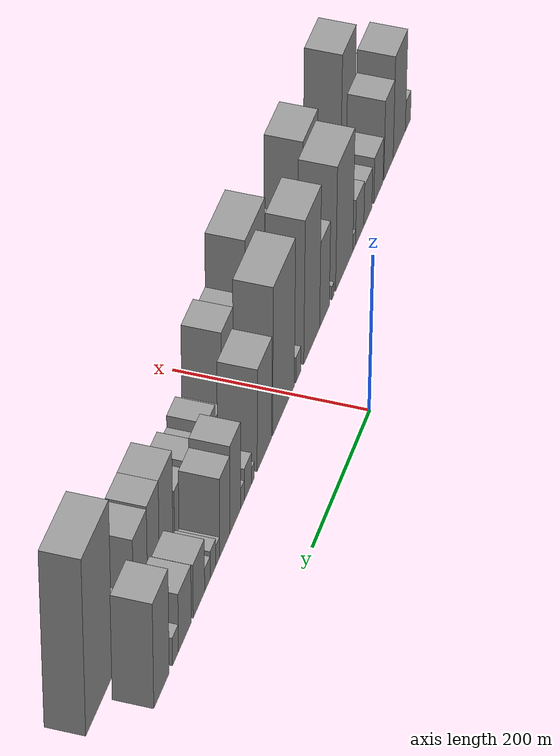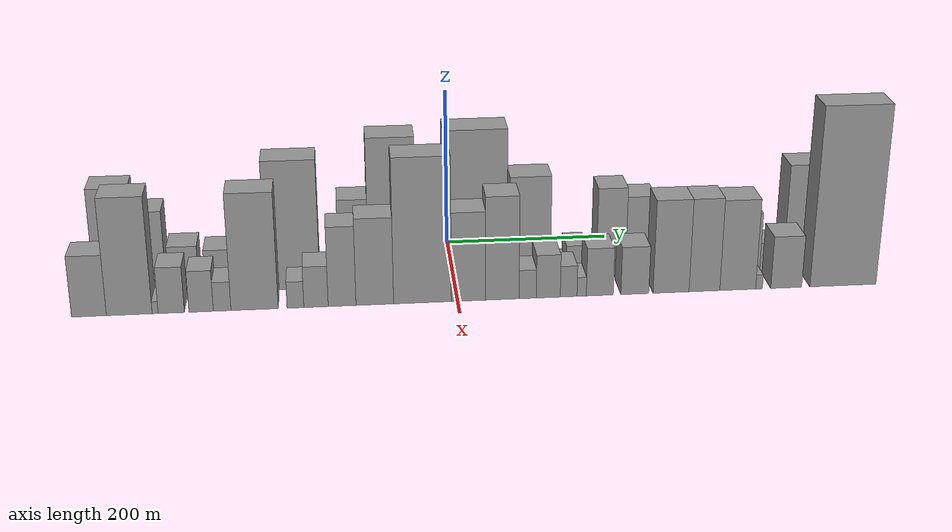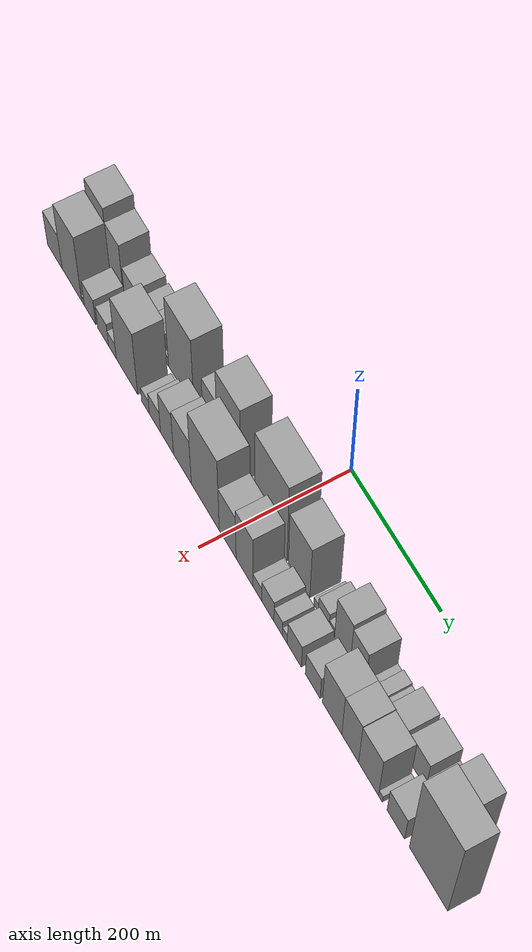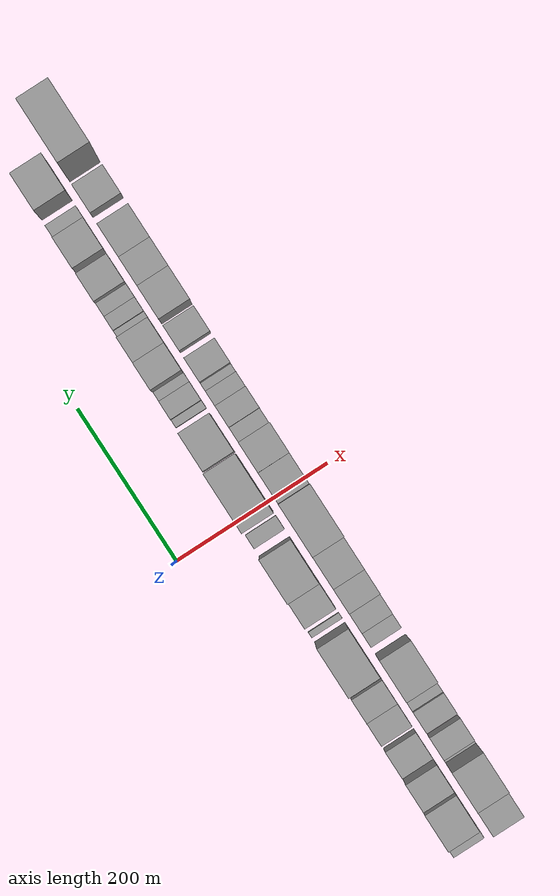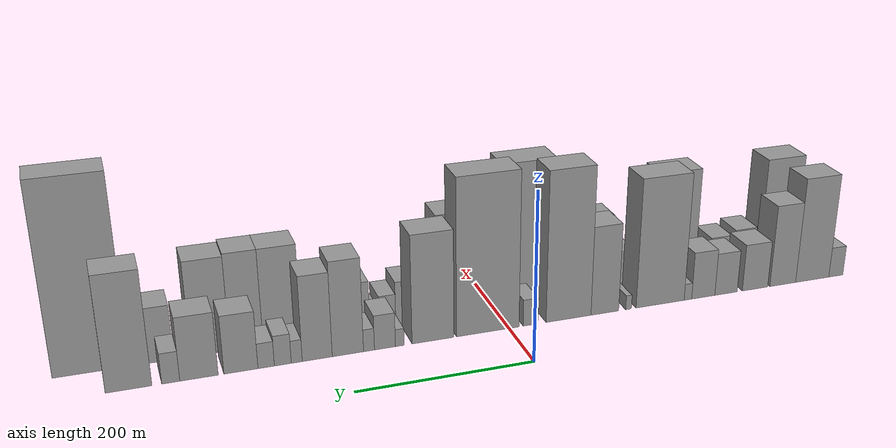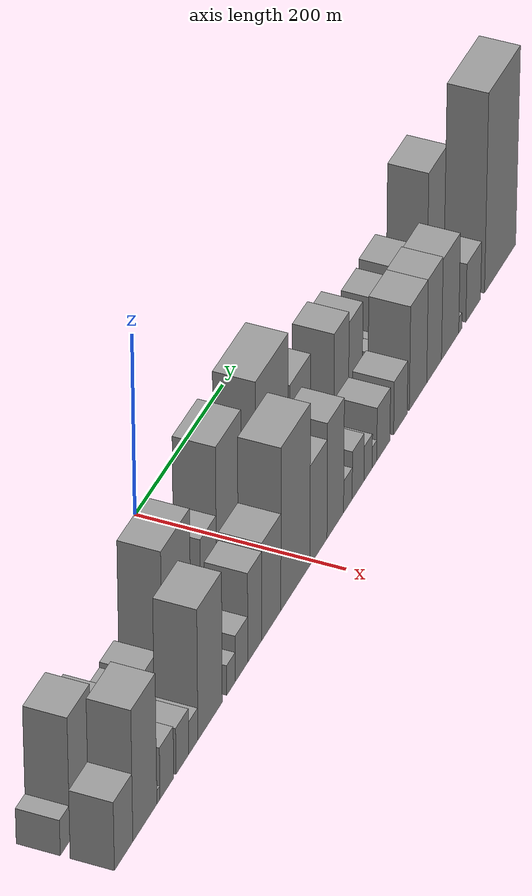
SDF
<sdf version="1.6">
 <world name="default">
  <scene>
   <sky><clouds><speed>12</speed></clouds></sky>
   <ambient>0.4 0.4 0.4 1</ambient>
   <background>0.7 0.7 0.7 1</background>
   <shadows>1</shadows>
  </scene>
  <gravity>0 0 -9.8066</gravity>
  <magnetic_field>6e-06 2.3e-05 -4.2e-05</magnetic_field>
  <physics default="0" name="default_physics" type="ode">
   <ode>
    <solver>
     <type>quick</type>
     <iters>10</iters>
     <sor>1.0</sor>
     <use_dynamic_moi_rescaling>0</use_dynamic_moi_rescaling>
    </solver>
    <constraints>
     <cfm>0</cfm>
     <erp>0.2</erp>
     <contact_max_correcting_vel>100</contact_max_correcting_vel>
     <contact_surface_layer>0.001</contact_surface_layer>
    </constraints>
   </ode>
   <max_step_size>0.004</max_step_size>
   <real_time_factor>1</real_time_factor>
   <real_time_update_rate>250</real_time_update_rate>
  </physics>
  <light name="sun" type="directional">
   <pose>0 0 10 0 0 0</pose>
   <diffuse>0.8 0.8 0.8 1</diffuse>
   <specular>0.2 0.2 0.2 1</specular>
   <attenuation>
    <range>1000</range>
    <constant>0.9</constant>
    <linear>0.01</linear>
    <quadratic>0.001</quadratic>
   </attenuation>
   <direction>-0.5 0.1 -0.9</direction>
  </light>
  <model name="building_1">
   <static>1</static>
   <pose>100.0000 -428.0619 0 0.000000 0.000000 0.000000</pose>
   <link name="link">
    <pose>0 0 19.50 0 0 0</pose>
    <collision name="collision"><geometry><box><size>40.0000 19.8762 39.0000</size></box></geometry></collision>
    <visual name="visual">
     <cast_shadows>0</cast_shadows>
     <geometry><box><size>40.0000 19.8762 39.0000</size></box></geometry>
     <material>
      <script>
       <uri>model://grey_wall/materials/scripts</uri>
       <uri>model://grey_wall/materials/textures</uri>
       <name>vrc/grey_wall</name>
      </script>
     </material>
    </visual>
   </link>
  </model>
  <model name="building_2">
   <static>1</static>
   <pose>100.0000 -394.8183 0 0.000000 0.000000 0.000000</pose>
   <link name="link">
    <pose>0 0 67.50 0 0 0</pose>
    <collision name="collision"><geometry><box><size>40.0000 46.6110 135.0000</size></box></geometry></collision>
    <visual name="visual">
     <cast_shadows>0</cast_shadows>
     <geometry><box><size>40.0000 46.6110 135.0000</size></box></geometry>
     <material>
      <script>
       <uri>model://grey_wall/materials/scripts</uri>
       <uri>model://grey_wall/materials/textures</uri>
       <name>vrc/grey_wall</name>
      </script>
     </material>
    </visual>
   </link>
  </model>
  <model name="building_3">
   <static>1</static>
   <pose>100.0000 -353.7375 0 0.000000 0.000000 0.000000</pose>
   <link name="link">
    <pose>0 0 52.50 0 0 0</pose>
    <collision name="collision"><geometry><box><size>40.0000 35.5506 105.0000</size></box></geometry></collision>
    <visual name="visual">
     <cast_shadows>0</cast_shadows>
     <geometry><box><size>40.0000 35.5506 105.0000</size></box></geometry>
     <material>
      <script>
       <uri>model://grey_wall/materials/scripts</uri>
       <uri>model://grey_wall/materials/textures</uri>
       <name>vrc/grey_wall</name>
      </script>
     </material>
    </visual>
   </link>
  </model>
  <model name="building_4">
   <static>1</static>
   <pose>100.0000 -315.6995 0 0.000000 0.000000 0.000000</pose>
   <link name="link">
    <pose>0 0 30.00 0 0 0</pose>
    <collision name="collision"><geometry><box><size>40.0000 34.5254 60.0000</size></box></geometry></collision>
    <visual name="visual">
     <cast_shadows>0</cast_shadows>
     <geometry><box><size>40.0000 34.5254 60.0000</size></box></geometry>
     <material>
      <script>
       <uri>model://grey_wall/materials/scripts</uri>
       <uri>model://grey_wall/materials/textures</uri>
       <name>vrc/grey_wall</name>
      </script>
     </material>
    </visual>
   </link>
  </model>
  <model name="building_5">
   <static>1</static>
   <pose>100.0000 -276.4396 0 0.000000 0.000000 0.000000</pose>
   <link name="link">
    <pose>0 0 27.00 0 0 0</pose>
    <collision name="collision"><geometry><box><size>40.0000 29.9944 54.0000</size></box></geometry></collision>
    <visual name="visual">
     <cast_shadows>0</cast_shadows>
     <geometry><box><size>40.0000 29.9944 54.0000</size></box></geometry>
     <material>
      <script>
       <uri>model://grey_wall/materials/scripts</uri>
       <uri>model://grey_wall/materials/textures</uri>
       <name>vrc/grey_wall</name>
      </script>
     </material>
    </visual>
   </link>
  </model>
  <model name="building_6">
   <static>1</static>
   <pose>100.0000 -246.0505 0 0.000000 0.000000 0.000000</pose>
   <link name="link">
    <pose>0 0 30.00 0 0 0</pose>
    <collision name="collision"><geometry><box><size>40.0000 30.7838 60.0000</size></box></geometry></collision>
    <visual name="visual">
     <cast_shadows>0</cast_shadows>
     <geometry><box><size>40.0000 30.7838 60.0000</size></box></geometry>
     <material>
      <script>
       <uri>model://grey_wall/materials/scripts</uri>
       <uri>model://grey_wall/materials/textures</uri>
       <name>vrc/grey_wall</name>
      </script>
     </material>
    </visual>
   </link>
  </model>
  <model name="building_7">
   <static>1</static>
   <pose>100.0000 -225.7230 0 0.000000 0.000000 0.000000</pose>
   <link name="link">
    <pose>0 0 10.50 0 0 0</pose>
    <collision name="collision"><geometry><box><size>40.0000 9.8711 21.0000</size></box></geometry></collision>
    <visual name="visual">
     <cast_shadows>0</cast_shadows>
     <geometry><box><size>40.0000 9.8711 21.0000</size></box></geometry>
     <material>
      <script>
       <uri>model://grey_wall/materials/scripts</uri>
       <uri>model://grey_wall/materials/textures</uri>
       <name>vrc/grey_wall</name>
      </script>
     </material>
    </visual>
   </link>
  </model>
  <model name="building_8">
   <static>1</static>
   <pose>100.0000 -189.5432 0 0.000000 0.000000 0.000000</pose>
   <link name="link">
    <pose>0 0 81.00 0 0 0</pose>
    <collision name="collision"><geometry><box><size>40.0000 62.4884 162.0000</size></box></geometry></collision>
    <visual name="visual">
     <cast_shadows>0</cast_shadows>
     <geometry><box><size>40.0000 62.4884 162.0000</size></box></geometry>
     <material>
      <script>
       <uri>model://grey_wall/materials/scripts</uri>
       <uri>model://grey_wall/materials/textures</uri>
       <name>vrc/grey_wall</name>
      </script>
     </material>
    </visual>
   </link>
  </model>
  <model name="building_9">
   <static>1</static>
   <pose>100.0000 -148.6420 0 0.000000 0.000000 0.000000</pose>
   <link name="link">
    <pose>0 0 9.00 0 0 0</pose>
    <collision name="collision"><geometry><box><size>40.0000 7.3141 18.0000</size></box></geometry></collision>
    <visual name="visual">
     <cast_shadows>0</cast_shadows>
     <geometry><box><size>40.0000 7.3141 18.0000</size></box></geometry>
     <material>
      <script>
       <uri>model://grey_wall/materials/scripts</uri>
       <uri>model://grey_wall/materials/textures</uri>
       <name>vrc/grey_wall</name>
      </script>
     </material>
    </visual>
   </link>
  </model>
  <model name="building_10">
   <static>1</static>
   <pose>100.0000 -118.5109 0 0.000000 0.000000 0.000000</pose>
   <link name="link">
    <pose>0 0 55.50 0 0 0</pose>
    <collision name="collision"><geometry><box><size>40.0000 34.9482 111.0000</size></box></geometry></collision>
    <visual name="visual">
     <cast_shadows>0</cast_shadows>
     <geometry><box><size>40.0000 34.9482 111.0000</size></box></geometry>
     <material>
      <script>
       <uri>model://grey_wall/materials/scripts</uri>
       <uri>model://grey_wall/materials/textures</uri>
       <name>vrc/grey_wall</name>
      </script>
     </material>
    </visual>
   </link>
  </model>
  <model name="building_11">
   <static>1</static>
   <pose>100.0000 -73.1093 0 0.000000 0.000000 0.000000</pose>
   <link name="link">
    <pose>0 0 93.00 0 0 0</pose>
    <collision name="collision"><geometry><box><size>40.0000 55.8548 186.0000</size></box></geometry></collision>
    <visual name="visual">
     <cast_shadows>0</cast_shadows>
     <geometry><box><size>40.0000 55.8548 186.0000</size></box></geometry>
     <material>
      <script>
       <uri>model://grey_wall/materials/scripts</uri>
       <uri>model://grey_wall/materials/textures</uri>
       <name>vrc/grey_wall</name>
      </script>
     </material>
    </visual>
   </link>
  </model>
  <model name="building_12">
   <static>1</static>
   <pose>100.0000 -26.1855 0 0.000000 0.000000 0.000000</pose>
   <link name="link">
    <pose>0 0 16.50 0 0 0</pose>
    <collision name="collision"><geometry><box><size>40.0000 17.9928 33.0000</size></box></geometry></collision>
    <visual name="visual">
     <cast_shadows>0</cast_shadows>
     <geometry><box><size>40.0000 17.9928 33.0000</size></box></geometry>
     <material>
      <script>
       <uri>model://grey_wall/materials/scripts</uri>
       <uri>model://grey_wall/materials/textures</uri>
       <name>vrc/grey_wall</name>
      </script>
     </material>
    </visual>
   </link>
  </model>
  <model name="building_13">
   <static>1</static>
   <pose>100.0000 25.1764 0 0.000000 0.000000 0.000000</pose>
   <link name="link">
    <pose>0 0 96.00 0 0 0</pose>
    <collision name="collision"><geometry><box><size>40.0000 74.7311 192.0000</size></box></geometry></collision>
    <visual name="visual">
     <cast_shadows>0</cast_shadows>
     <geometry><box><size>40.0000 74.7311 192.0000</size></box></geometry>
     <material>
      <script>
       <uri>model://grey_wall/materials/scripts</uri>
       <uri>model://grey_wall/materials/textures</uri>
       <name>vrc/grey_wall</name>
      </script>
     </material>
    </visual>
   </link>
  </model>
  <model name="building_14">
   <static>1</static>
   <pose>100.0000 89.9891 0 0.000000 0.000000 0.000000</pose>
   <link name="link">
    <pose>0 0 66.00 0 0 0</pose>
    <collision name="collision"><geometry><box><size>40.0000 48.8942 132.0000</size></box></geometry></collision>
    <visual name="visual">
     <cast_shadows>0</cast_shadows>
     <geometry><box><size>40.0000 48.8942 132.0000</size></box></geometry>
     <material>
      <script>
       <uri>model://grey_wall/materials/scripts</uri>
       <uri>model://grey_wall/materials/textures</uri>
       <name>vrc/grey_wall</name>
      </script>
     </material>
    </visual>
   </link>
  </model>
  <model name="building_15">
   <static>1</static>
   <pose>100.0000 128.4961 0 0.000000 0.000000 0.000000</pose>
   <link name="link">
    <pose>0 0 10.50 0 0 0</pose>
    <collision name="collision"><geometry><box><size>40.0000 10.1199 21.0000</size></box></geometry></collision>
    <visual name="visual">
     <cast_shadows>0</cast_shadows>
     <geometry><box><size>40.0000 10.1199 21.0000</size></box></geometry>
     <material>
      <script>
       <uri>model://grey_wall/materials/scripts</uri>
       <uri>model://grey_wall/materials/textures</uri>
       <name>vrc/grey_wall</name>
      </script>
     </material>
    </visual>
   </link>
  </model>
  <model name="building_16">
   <static>1</static>
   <pose>100.0000 145.5129 0 0.000000 0.000000 0.000000</pose>
   <link name="link">
    <pose>0 0 21.00 0 0 0</pose>
    <collision name="collision"><geometry><box><size>40.0000 23.9136 42.0000</size></box></geometry></collision>
    <visual name="visual">
     <cast_shadows>0</cast_shadows>
     <geometry><box><size>40.0000 23.9136 42.0000</size></box></geometry>
     <material>
      <script>
       <uri>model://grey_wall/materials/scripts</uri>
       <uri>model://grey_wall/materials/textures</uri>
       <name>vrc/grey_wall</name>
      </script>
     </material>
    </visual>
   </link>
  </model>
  <model name="building_17">
   <static>1</static>
   <pose>100.0000 163.6400 0 0.000000 0.000000 0.000000</pose>
   <link name="link">
    <pose>0 0 13.50 0 0 0</pose>
    <collision name="collision"><geometry><box><size>40.0000 12.3405 27.0000</size></box></geometry></collision>
    <visual name="visual">
     <cast_shadows>0</cast_shadows>
     <geometry><box><size>40.0000 12.3405 27.0000</size></box></geometry>
     <material>
      <script>
       <uri>model://grey_wall/materials/scripts</uri>
       <uri>model://grey_wall/materials/textures</uri>
       <name>vrc/grey_wall</name>
      </script>
     </material>
    </visual>
   </link>
  </model>
  <model name="building_18">
   <static>1</static>
   <pose>100.0000 187.3337 0 0.000000 0.000000 0.000000</pose>
   <link name="link">
    <pose>0 0 57.00 0 0 0</pose>
    <collision name="collision"><geometry><box><size>40.0000 35.0470 114.0000</size></box></geometry></collision>
    <visual name="visual">
     <cast_shadows>0</cast_shadows>
     <geometry><box><size>40.0000 35.0470 114.0000</size></box></geometry>
     <material>
      <script>
       <uri>model://grey_wall/materials/scripts</uri>
       <uri>model://grey_wall/materials/textures</uri>
       <name>vrc/grey_wall</name>
      </script>
     </material>
    </visual>
   </link>
  </model>
  <model name="building_19">
   <static>1</static>
   <pose>100.0000 221.4470 0 0.000000 0.000000 0.000000</pose>
   <link name="link">
    <pose>0 0 51.00 0 0 0</pose>
    <collision name="collision"><geometry><box><size>40.0000 33.1795 102.0000</size></box></geometry></collision>
    <visual name="visual">
     <cast_shadows>0</cast_shadows>
     <geometry><box><size>40.0000 33.1795 102.0000</size></box></geometry>
     <material>
      <script>
       <uri>model://grey_wall/materials/scripts</uri>
       <uri>model://grey_wall/materials/textures</uri>
       <name>vrc/grey_wall</name>
      </script>
     </material>
    </visual>
   </link>
  </model>
  <model name="building_20">
   <static>1</static>
   <pose>100.0000 244.0328 0 0.000000 0.000000 0.000000</pose>
   <link name="link">
    <pose>0 0 13.50 0 0 0</pose>
    <collision name="collision"><geometry><box><size>40.0000 11.9920 27.0000</size></box></geometry></collision>
    <visual name="visual">
     <cast_shadows>0</cast_shadows>
     <geometry><box><size>40.0000 11.9920 27.0000</size></box></geometry>
     <material>
      <script>
       <uri>model://grey_wall/materials/scripts</uri>
       <uri>model://grey_wall/materials/textures</uri>
       <name>vrc/grey_wall</name>
      </script>
     </material>
    </visual>
   </link>
  </model>
  <model name="building_21">
   <static>1</static>
   <pose>100.0000 259.2076 0 0.000000 0.000000 0.000000</pose>
   <link name="link">
    <pose>0 0 18.00 0 0 0</pose>
    <collision name="collision"><geometry><box><size>40.0000 18.3576 36.0000</size></box></geometry></collision>
    <visual name="visual">
     <cast_shadows>0</cast_shadows>
     <geometry><box><size>40.0000 18.3576 36.0000</size></box></geometry>
     <material>
      <script>
       <uri>model://grey_wall/materials/scripts</uri>
       <uri>model://grey_wall/materials/textures</uri>
       <name>vrc/grey_wall</name>
      </script>
     </material>
    </visual>
   </link>
  </model>
  <model name="building_22">
   <static>1</static>
   <pose>100.0000 277.2359 0 0.000000 0.000000 0.000000</pose>
   <link name="link">
    <pose>0 0 15.00 0 0 0</pose>
    <collision name="collision"><geometry><box><size>40.0000 17.6990 30.0000</size></box></geometry></collision>
    <visual name="visual">
     <cast_shadows>0</cast_shadows>
     <geometry><box><size>40.0000 17.6990 30.0000</size></box></geometry>
     <material>
      <script>
       <uri>model://grey_wall/materials/scripts</uri>
       <uri>model://grey_wall/materials/textures</uri>
       <name>vrc/grey_wall</name>
      </script>
     </material>
    </visual>
   </link>
  </model>
  <model name="building_23">
   <static>1</static>
   <pose>100.0000 304.2465 0 0.000000 0.000000 0.000000</pose>
   <link name="link">
    <pose>0 0 34.50 0 0 0</pose>
    <collision name="collision"><geometry><box><size>40.0000 36.3223 69.0000</size></box></geometry></collision>
    <visual name="visual">
     <cast_shadows>0</cast_shadows>
     <geometry><box><size>40.0000 36.3223 69.0000</size></box></geometry>
     <material>
      <script>
       <uri>model://grey_wall/materials/scripts</uri>
       <uri>model://grey_wall/materials/textures</uri>
       <name>vrc/grey_wall</name>
      </script>
     </material>
    </visual>
   </link>
  </model>
  <model name="building_24">
   <static>1</static>
   <pose>100.0000 348.5657 0 0.000000 0.000000 0.000000</pose>
   <link name="link">
    <pose>0 0 37.50 0 0 0</pose>
    <collision name="collision"><geometry><box><size>40.0000 40.3161 75.0000</size></box></geometry></collision>
    <visual name="visual">
     <cast_shadows>0</cast_shadows>
     <geometry><box><size>40.0000 40.3161 75.0000</size></box></geometry>
     <material>
      <script>
       <uri>model://grey_wall/materials/scripts</uri>
       <uri>model://grey_wall/materials/textures</uri>
       <name>vrc/grey_wall</name>
      </script>
     </material>
    </visual>
   </link>
  </model>
  <model name="building_25">
   <static>1</static>
   <pose>100.0000 378.0806 0 0.000000 0.000000 0.000000</pose>
   <link name="link">
    <pose>0 0 18.00 0 0 0</pose>
    <collision name="collision"><geometry><box><size>40.0000 18.7138 36.0000</size></box></geometry></collision>
    <visual name="visual">
     <cast_shadows>0</cast_shadows>
     <geometry><box><size>40.0000 18.7138 36.0000</size></box></geometry>
     <material>
      <script>
       <uri>model://grey_wall/materials/scripts</uri>
       <uri>model://grey_wall/materials/textures</uri>
       <name>vrc/grey_wall</name>
      </script>
     </material>
    </visual>
   </link>
  </model>
  <model name="building_26">
   <static>1</static>
   <pose>100.0000 421.2132 0 0.000000 0.000000 0.000000</pose>
   <link name="link">
    <pose>0 0 67.50 0 0 0</pose>
    <collision name="collision"><geometry><box><size>40.0000 47.5513 135.0000</size></box></geometry></collision>
    <visual name="visual">
     <cast_shadows>0</cast_shadows>
     <geometry><box><size>40.0000 47.5513 135.0000</size></box></geometry>
     <material>
      <script>
       <uri>model://grey_wall/materials/scripts</uri>
       <uri>model://grey_wall/materials/textures</uri>
       <name>vrc/grey_wall</name>
      </script>
     </material>
    </visual>
   </link>
  </model>
  <model name="building_27">
   <static>1</static>
   <pose>149.0000 -418.5495 0 0.000000 0.000000 0.000000</pose>
   <link name="link">
    <pose>0 0 37.50 0 0 0</pose>
    <collision name="collision"><geometry><box><size>40.0000 38.9009 75.0000</size></box></geometry></collision>
    <visual name="visual">
     <cast_shadows>0</cast_shadows>
     <geometry><box><size>40.0000 38.9009 75.0000</size></box></geometry>
     <material>
      <script>
       <uri>model://grey_wall/materials/scripts</uri>
       <uri>model://grey_wall/materials/textures</uri>
       <name>vrc/grey_wall</name>
      </script>
     </material>
    </visual>
   </link>
  </model>
  <model name="building_28">
   <static>1</static>
   <pose>149.0000 -373.5591 0 0.000000 0.000000 0.000000</pose>
   <link name="link">
    <pose>0 0 72.00 0 0 0</pose>
    <collision name="collision"><geometry><box><size>40.0000 51.0800 144.0000</size></box></geometry></collision>
    <visual name="visual">
     <cast_shadows>0</cast_shadows>
     <geometry><box><size>40.0000 51.0800 144.0000</size></box></geometry>
     <material>
      <script>
       <uri>model://grey_wall/materials/scripts</uri>
       <uri>model://grey_wall/materials/textures</uri>
       <name>vrc/grey_wall</name>
      </script>
     </material>
    </visual>
   </link>
  </model>
  <model name="building_29">
   <static>1</static>
   <pose>149.0000 -344.6553 0 0.000000 0.000000 0.000000</pose>
   <link name="link">
    <pose>0 0 7.50 0 0 0</pose>
    <collision name="collision"><geometry><box><size>40.0000 6.7275 15.0000</size></box></geometry></collision>
    <visual name="visual">
     <cast_shadows>0</cast_shadows>
     <geometry><box><size>40.0000 6.7275 15.0000</size></box></geometry>
     <material>
      <script>
       <uri>model://grey_wall/materials/scripts</uri>
       <uri>model://grey_wall/materials/textures</uri>
       <name>vrc/grey_wall</name>
      </script>
     </material>
    </visual>
   </link>
  </model>
  <model name="building_30">
   <static>1</static>
   <pose>149.0000 -326.5664 0 0.000000 0.000000 0.000000</pose>
   <link name="link">
    <pose>0 0 28.50 0 0 0</pose>
    <collision name="collision"><geometry><box><size>40.0000 29.4504 57.0000</size></box></geometry></collision>
    <visual name="visual">
     <cast_shadows>0</cast_shadows>
     <geometry><box><size>40.0000 29.4504 57.0000</size></box></geometry>
     <material>
      <script>
       <uri>model://grey_wall/materials/scripts</uri>
       <uri>model://grey_wall/materials/textures</uri>
       <name>vrc/grey_wall</name>
      </script>
     </material>
    </visual>
   </link>
  </model>
  <model name="building_31">
   <static>1</static>
   <pose>149.0000 -293.0355 0 0.000000 0.000000 0.000000</pose>
   <link name="link">
    <pose>0 0 25.50 0 0 0</pose>
    <collision name="collision"><geometry><box><size>40.0000 27.6113 51.0000</size></box></geometry></collision>
    <visual name="visual">
     <cast_shadows>0</cast_shadows>
     <geometry><box><size>40.0000 27.6113 51.0000</size></box></geometry>
     <material>
      <script>
       <uri>model://grey_wall/materials/scripts</uri>
       <uri>model://grey_wall/materials/textures</uri>
       <name>vrc/grey_wall</name>
      </script>
     </material>
    </visual>
   </link>
  </model>
  <model name="building_32">
   <static>1</static>
   <pose>149.0000 -269.2811 0 0.000000 0.000000 0.000000</pose>
   <link name="link">
    <pose>0 0 18.00 0 0 0</pose>
    <collision name="collision"><geometry><box><size>40.0000 19.8977 36.0000</size></box></geometry></collision>
    <visual name="visual">
     <cast_shadows>0</cast_shadows>
     <geometry><box><size>40.0000 19.8977 36.0000</size></box></geometry>
     <material>
      <script>
       <uri>model://grey_wall/materials/scripts</uri>
       <uri>model://grey_wall/materials/textures</uri>
       <name>vrc/grey_wall</name>
      </script>
     </material>
    </visual>
   </link>
  </model>
  <model name="building_33">
   <static>1</static>
   <pose>149.0000 -232.5446 0 0.000000 0.000000 0.000000</pose>
   <link name="link">
    <pose>0 0 72.00 0 0 0</pose>
    <collision name="collision"><geometry><box><size>40.0000 53.5751 144.0000</size></box></geometry></collision>
    <visual name="visual">
     <cast_shadows>0</cast_shadows>
     <geometry><box><size>40.0000 53.5751 144.0000</size></box></geometry>
     <material>
      <script>
       <uri>model://grey_wall/materials/scripts</uri>
       <uri>model://grey_wall/materials/textures</uri>
       <name>vrc/grey_wall</name>
      </script>
     </material>
    </visual>
   </link>
  </model>
  <model name="building_34">
   <static>1</static>
   <pose>149.0000 -186.2283 0 0.000000 0.000000 0.000000</pose>
   <link name="link">
    <pose>0 0 16.50 0 0 0</pose>
    <collision name="collision"><geometry><box><size>40.0000 19.0576 33.0000</size></box></geometry></collision>
    <visual name="visual">
     <cast_shadows>0</cast_shadows>
     <geometry><box><size>40.0000 19.0576 33.0000</size></box></geometry>
     <material>
      <script>
       <uri>model://grey_wall/materials/scripts</uri>
       <uri>model://grey_wall/materials/textures</uri>
       <name>vrc/grey_wall</name>
      </script>
     </material>
    </visual>
   </link>
  </model>
  <model name="building_35">
   <static>1</static>
   <pose>149.0000 -162.8109 0 0.000000 0.000000 0.000000</pose>
   <link name="link">
    <pose>0 0 25.50 0 0 0</pose>
    <collision name="collision"><geometry><box><size>40.0000 27.7771 51.0000</size></box></geometry></collision>
    <visual name="visual">
     <cast_shadows>0</cast_shadows>
     <geometry><box><size>40.0000 27.7771 51.0000</size></box></geometry>
     <material>
      <script>
       <uri>model://grey_wall/materials/scripts</uri>
       <uri>model://grey_wall/materials/textures</uri>
       <name>vrc/grey_wall</name>
      </script>
     </material>
    </visual>
   </link>
  </model>
  <model name="building_36">
   <static>1</static>
   <pose>149.0000 -132.9954 0 0.000000 0.000000 0.000000</pose>
   <link name="link">
    <pose>0 0 49.50 0 0 0</pose>
    <collision name="collision"><geometry><box><size>40.0000 31.8540 99.0000</size></box></geometry></collision>
    <visual name="visual">
     <cast_shadows>0</cast_shadows>
     <geometry><box><size>40.0000 31.8540 99.0000</size></box></geometry>
     <material>
      <script>
       <uri>model://grey_wall/materials/scripts</uri>
       <uri>model://grey_wall/materials/textures</uri>
       <name>vrc/grey_wall</name>
      </script>
     </material>
    </visual>
   </link>
  </model>
  <model name="building_37">
   <static>1</static>
   <pose>149.0000 -95.5155 0 0.000000 0.000000 0.000000</pose>
   <link name="link">
    <pose>0 0 54.00 0 0 0</pose>
    <collision name="collision"><geometry><box><size>40.0000 43.1057 108.0000</size></box></geometry></collision>
    <visual name="visual">
     <cast_shadows>0</cast_shadows>
     <geometry><box><size>40.0000 43.1057 108.0000</size></box></geometry>
     <material>
      <script>
       <uri>model://grey_wall/materials/scripts</uri>
       <uri>model://grey_wall/materials/textures</uri>
       <name>vrc/grey_wall</name>
      </script>
     </material>
    </visual>
   </link>
  </model>
  <model name="building_38">
   <static>1</static>
   <pose>149.0000 -40.6040 0 0.000000 0.000000 0.000000</pose>
   <link name="link">
    <pose>0 0 90.00 0 0 0</pose>
    <collision name="collision"><geometry><box><size>40.0000 66.7174 180.0000</size></box></geometry></collision>
    <visual name="visual">
     <cast_shadows>0</cast_shadows>
     <geometry><box><size>40.0000 66.7174 180.0000</size></box></geometry>
     <material>
      <script>
       <uri>model://grey_wall/materials/scripts</uri>
       <uri>model://grey_wall/materials/textures</uri>
       <name>vrc/grey_wall</name>
      </script>
     </material>
    </visual>
   </link>
  </model>
  <model name="building_39">
   <static>1</static>
   <pose>149.0000 12.5430 0 0.000000 0.000000 0.000000</pose>
   <link name="link">
    <pose>0 0 55.50 0 0 0</pose>
    <collision name="collision"><geometry><box><size>40.0000 39.5765 111.0000</size></box></geometry></collision>
    <visual name="visual">
     <cast_shadows>0</cast_shadows>
     <geometry><box><size>40.0000 39.5765 111.0000</size></box></geometry>
     <material>
      <script>
       <uri>model://grey_wall/materials/scripts</uri>
       <uri>model://grey_wall/materials/textures</uri>
       <name>vrc/grey_wall</name>
      </script>
     </material>
    </visual>
   </link>
  </model>
  <model name="building_40">
   <static>1</static>
   <pose>149.0000 51.8193 0 0.000000 0.000000 0.000000</pose>
   <link name="link">
    <pose>0 0 64.50 0 0 0</pose>
    <collision name="collision"><geometry><box><size>40.0000 38.9761 129.0000</size></box></geometry></collision>
    <visual name="visual">
     <cast_shadows>0</cast_shadows>
     <geometry><box><size>40.0000 38.9761 129.0000</size></box></geometry>
     <material>
      <script>
       <uri>model://grey_wall/materials/scripts</uri>
       <uri>model://grey_wall/materials/textures</uri>
       <name>vrc/grey_wall</name>
      </script>
     </material>
    </visual>
   </link>
  </model>
  <model name="building_41">
   <static>1</static>
   <pose>149.0000 81.4013 0 0.000000 0.000000 0.000000</pose>
   <link name="link">
    <pose>0 0 18.00 0 0 0</pose>
    <collision name="collision"><geometry><box><size>40.0000 20.1880 36.0000</size></box></geometry></collision>
    <visual name="visual">
     <cast_shadows>0</cast_shadows>
     <geometry><box><size>40.0000 20.1880 36.0000</size></box></geometry>
     <material>
      <script>
       <uri>model://grey_wall/materials/scripts</uri>
       <uri>model://grey_wall/materials/textures</uri>
       <name>vrc/grey_wall</name>
      </script>
     </material>
    </visual>
   </link>
  </model>
  <model name="building_42">
   <static>1</static>
   <pose>149.0000 105.5589 0 0.000000 0.000000 0.000000</pose>
   <link name="link">
    <pose>0 0 27.00 0 0 0</pose>
    <collision name="collision"><geometry><box><size>40.0000 28.1271 54.0000</size></box></geometry></collision>
    <visual name="visual">
     <cast_shadows>0</cast_shadows>
     <geometry><box><size>40.0000 28.1271 54.0000</size></box></geometry>
     <material>
      <script>
       <uri>model://grey_wall/materials/scripts</uri>
       <uri>model://grey_wall/materials/textures</uri>
       <name>vrc/grey_wall</name>
      </script>
     </material>
    </visual>
   </link>
  </model>
  <model name="building_43">
   <static>1</static>
   <pose>149.0000 129.4141 0 0.000000 0.000000 0.000000</pose>
   <link name="link">
    <pose>0 0 19.50 0 0 0</pose>
    <collision name="collision"><geometry><box><size>40.0000 19.5834 39.0000</size></box></geometry></collision>
    <visual name="visual">
     <cast_shadows>0</cast_shadows>
     <geometry><box><size>40.0000 19.5834 39.0000</size></box></geometry>
     <material>
      <script>
       <uri>model://grey_wall/materials/scripts</uri>
       <uri>model://grey_wall/materials/textures</uri>
       <name>vrc/grey_wall</name>
      </script>
     </material>
    </visual>
   </link>
  </model>
  <model name="building_44">
   <static>1</static>
   <pose>149.0000 144.6477 0 0.000000 0.000000 0.000000</pose>
   <link name="link">
    <pose>0 0 12.00 0 0 0</pose>
    <collision name="collision"><geometry><box><size>40.0000 10.8839 24.0000</size></box></geometry></collision>
    <visual name="visual">
     <cast_shadows>0</cast_shadows>
     <geometry><box><size>40.0000 10.8839 24.0000</size></box></geometry>
     <material>
      <script>
       <uri>model://grey_wall/materials/scripts</uri>
       <uri>model://grey_wall/materials/textures</uri>
       <name>vrc/grey_wall</name>
      </script>
     </material>
    </visual>
   </link>
  </model>
  <model name="building_45">
   <static>1</static>
   <pose>149.0000 165.9716 0 0.000000 0.000000 0.000000</pose>
   <link name="link">
    <pose>0 0 30.00 0 0 0</pose>
    <collision name="collision"><geometry><box><size>40.0000 31.7638 60.0000</size></box></geometry></collision>
    <visual name="visual">
     <cast_shadows>0</cast_shadows>
     <geometry><box><size>40.0000 31.7638 60.0000</size></box></geometry>
     <material>
      <script>
       <uri>model://grey_wall/materials/scripts</uri>
       <uri>model://grey_wall/materials/textures</uri>
       <name>vrc/grey_wall</name>
      </script>
     </material>
    </visual>
   </link>
  </model>
  <model name="building_46">
   <static>1</static>
   <pose>149.0000 207.3541 0 0.000000 0.000000 0.000000</pose>
   <link name="link">
    <pose>0 0 30.00 0 0 0</pose>
    <collision name="collision"><geometry><box><size>40.0000 33.0013 60.0000</size></box></geometry></collision>
    <visual name="visual">
     <cast_shadows>0</cast_shadows>
     <geometry><box><size>40.0000 33.0013 60.0000</size></box></geometry>
     <material>
      <script>
       <uri>model://grey_wall/materials/scripts</uri>
       <uri>model://grey_wall/materials/textures</uri>
       <name>vrc/grey_wall</name>
      </script>
     </material>
    </visual>
   </link>
  </model>
  <model name="building_47">
   <static>1</static>
   <pose>149.0000 250.2109 0 0.000000 0.000000 0.000000</pose>
   <link name="link">
    <pose>0 0 58.50 0 0 0</pose>
    <collision name="collision"><geometry><box><size>40.0000 42.7122 117.0000</size></box></geometry></collision>
    <visual name="visual">
     <cast_shadows>0</cast_shadows>
     <geometry><box><size>40.0000 42.7122 117.0000</size></box></geometry>
     <material>
      <script>
       <uri>model://grey_wall/materials/scripts</uri>
       <uri>model://grey_wall/materials/textures</uri>
       <name>vrc/grey_wall</name>
      </script>
     </material>
    </visual>
   </link>
  </model>
  <model name="building_48">
   <static>1</static>
   <pose>149.0000 289.8653 0 0.000000 0.000000 0.000000</pose>
   <link name="link">
    <pose>0 0 58.50 0 0 0</pose>
    <collision name="collision"><geometry><box><size>40.0000 36.5966 117.0000</size></box></geometry></collision>
    <visual name="visual">
     <cast_shadows>0</cast_shadows>
     <geometry><box><size>40.0000 36.5966 117.0000</size></box></geometry>
     <material>
      <script>
       <uri>model://grey_wall/materials/scripts</uri>
       <uri>model://grey_wall/materials/textures</uri>
       <name>vrc/grey_wall</name>
      </script>
     </material>
    </visual>
   </link>
  </model>
  <model name="building_49">
   <static>1</static>
   <pose>149.0000 329.6094 0 0.000000 0.000000 0.000000</pose>
   <link name="link">
    <pose>0 0 57.00 0 0 0</pose>
    <collision name="collision"><geometry><box><size>40.0000 42.8917 114.0000</size></box></geometry></collision>
    <visual name="visual">
     <cast_shadows>0</cast_shadows>
     <geometry><box><size>40.0000 42.8917 114.0000</size></box></geometry>
     <material>
      <script>
       <uri>model://grey_wall/materials/scripts</uri>
       <uri>model://grey_wall/materials/textures</uri>
       <name>vrc/grey_wall</name>
      </script>
     </material>
    </visual>
   </link>
  </model>
  <model name="building_50">
   <static>1</static>
   <pose>149.0000 355.1348 0 0.000000 0.000000 0.000000</pose>
   <link name="link">
    <pose>0 0 9.00 0 0 0</pose>
    <collision name="collision"><geometry><box><size>40.0000 8.1591 18.0000</size></box></geometry></collision>
    <visual name="visual">
     <cast_shadows>0</cast_shadows>
     <geometry><box><size>40.0000 8.1591 18.0000</size></box></geometry>
     <material>
      <script>
       <uri>model://grey_wall/materials/scripts</uri>
       <uri>model://grey_wall/materials/textures</uri>
       <name>vrc/grey_wall</name>
      </script>
     </material>
    </visual>
   </link>
  </model>
  <model name="building_51">
   <static>1</static>
   <pose>149.0000 387.7445 0 0.000000 0.000000 0.000000</pose>
   <link name="link">
    <pose>0 0 33.00 0 0 0</pose>
    <collision name="collision"><geometry><box><size>40.0000 37.0604 66.0000</size></box></geometry></collision>
    <visual name="visual">
     <cast_shadows>0</cast_shadows>
     <geometry><box><size>40.0000 37.0604 66.0000</size></box></geometry>
     <material>
      <script>
       <uri>model://grey_wall/materials/scripts</uri>
       <uri>model://grey_wall/materials/textures</uri>
       <name>vrc/grey_wall</name>
      </script>
     </material>
    </visual>
   </link>
  </model>
  <model name="building_52">
   <static>1</static>
   <pose>149.0000 456.1839 0 0.000000 0.000000 0.000000</pose>
   <link name="link">
    <pose>0 0 112.50 0 0 0</pose>
    <collision name="collision"><geometry><box><size>40.0000 79.8184 225.0000</size></box></geometry></collision>
    <visual name="visual">
     <cast_shadows>0</cast_shadows>
     <geometry><box><size>40.0000 79.8184 225.0000</size></box></geometry>
     <material>
      <script>
       <uri>model://grey_wall/materials/scripts</uri>
       <uri>model://grey_wall/materials/textures</uri>
       <name>vrc/grey_wall</name>
      </script>
     </material>
    </visual>
   </link>
  </model>
 </world>
</sdf>
